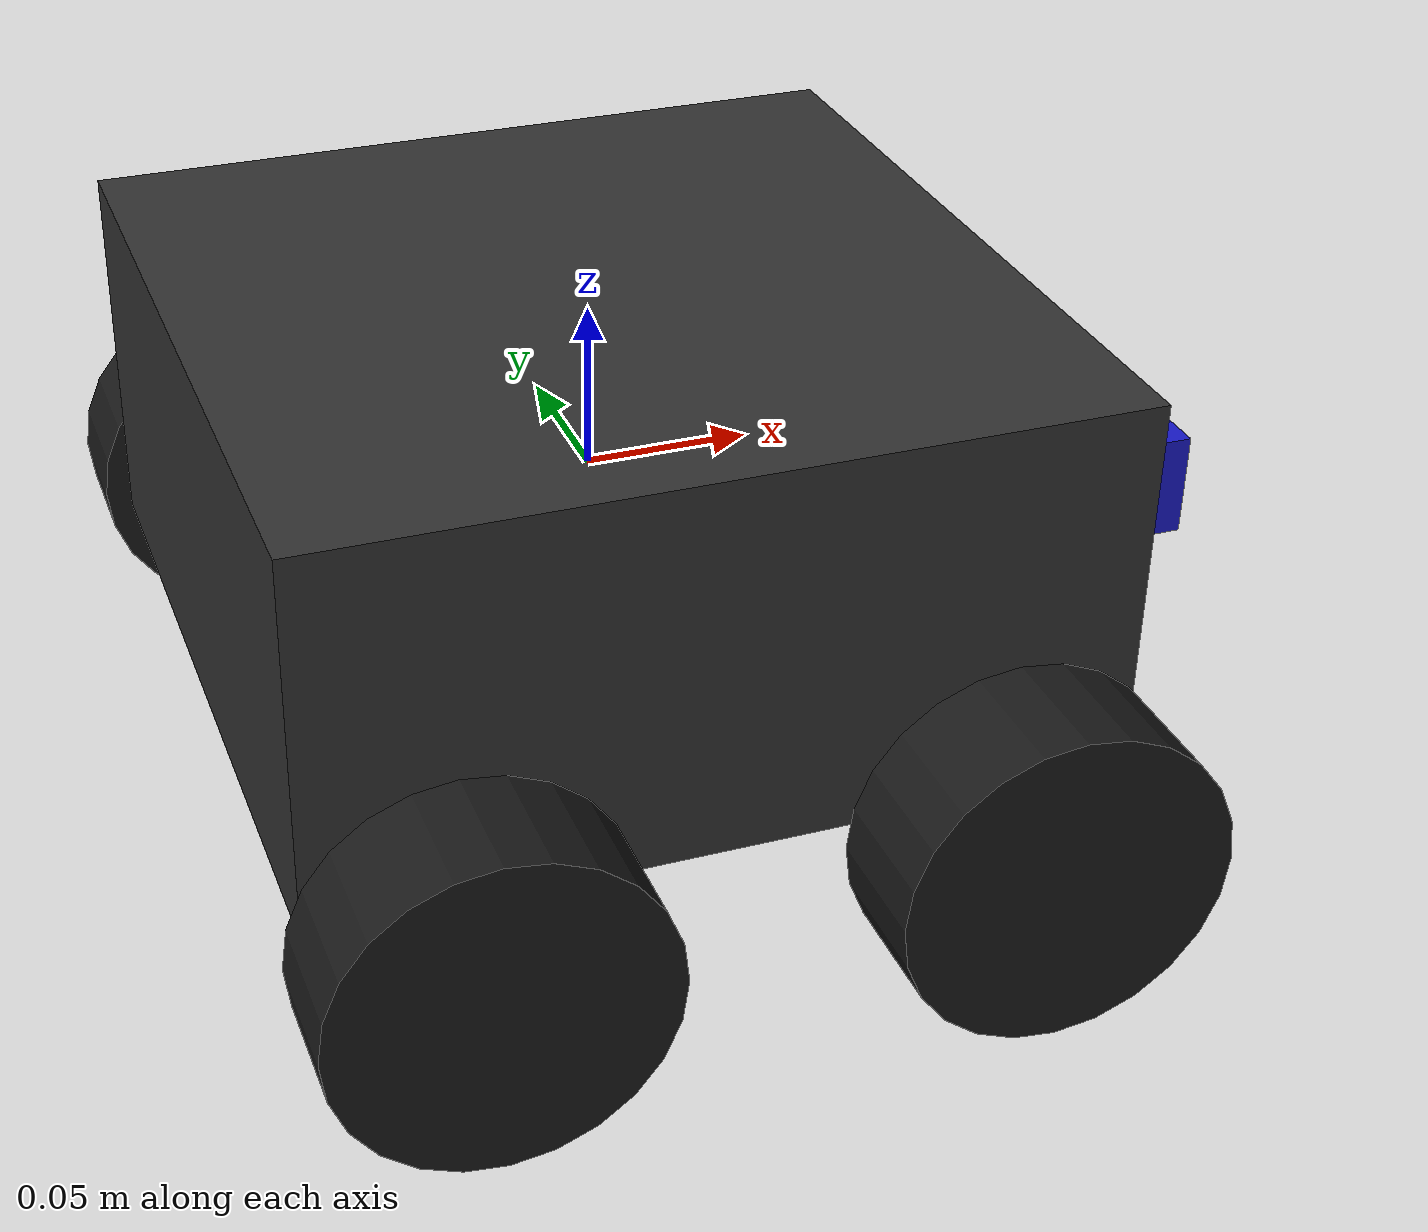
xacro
<?xml version="1.0"?>
<robot name="collecting_robot" xmlns:xacro="http://www.ros.org/wiki/xacro">

  <!-- Real dimensions (m, kg) -->
  <xacro:property name="base_length" value="0.24"/>
  <xacro:property name="base_width"  value="0.24"/>
  <xacro:property name="base_height" value="0.116"/>
  <xacro:property name="base_mass"   value="2.0"/>

  <xacro:property name="wheel_radius" value="0.0485"/>
  <xacro:property name="wheel_width"  value="0.038"/>
  <xacro:property name="wheel_mass"   value="0.15"/>
  <xacro:property name="wheel_x_off"  value="0.0785"/>   <!-- wheel center -> robot center, longitudinal -->
  <xacro:property name="wheel_y_off"  value="0.148"/>    <!-- wheel center -> robot center, lateral -->

  <!-- Astra camera relative to base_link (hand-measured) -->
  <xacro:property name="cam_x" value="0.135"/>
  <xacro:property name="cam_y" value="0.0"/>
  <xacro:property name="cam_z" value="-0.05"/>           <!-- relative to the top of the body -->

  <xacro:property name="PI" value="3.14159265359"/>

  <material name="dark_gray"><color rgba="0.2 0.2 0.2 1.0"/></material>
  <material name="black"><color rgba="0.1 0.1 0.1 1.0"/></material>
  <material name="camera_blue"><color rgba="0.1 0.1 0.8 1.0"/></material>

  <!-- Inertia macros -->
  <xacro:macro name="box_inertia" params="m x y z">
    <inertial>
      <mass value="${m}"/>
      <inertia ixx="${m*(y*y+z*z)/12}" ixy="0" ixz="0"
               iyy="${m*(x*x+z*z)/12}" iyz="0"
               izz="${m*(x*x+y*y)/12}"/>
    </inertial>
  </xacro:macro>

  <xacro:macro name="cylinder_inertia" params="m r h">
    <inertial>
      <mass value="${m}"/>
      <inertia ixx="${m*(3*r*r+h*h)/12}" ixy="0" ixz="0"
               iyy="${m*(3*r*r+h*h)/12}" iyz="0"
               izz="${m*r*r/2}"/>
    </inertial>
  </xacro:macro>

  <!-- base_link: the navigation frame (tree ROOT, X-forward per REP-103) -->
  <link name="base_link">
    <visual>
      <origin xyz="0 0 0" rpy="0 0 0"/>
      <geometry><box size="${base_length} ${base_width} ${base_height}"/></geometry>
      <material name="dark_gray"/>
    </visual>
    <collision>
      <geometry><box size="${base_length} ${base_width} ${base_height}"/></geometry>
    </collision>
    <xacro:box_inertia m="${base_mass}" x="${base_length}" y="${base_width}" z="${base_height}"/>
  </link>

  <!-- base_footprint: ground projection (z=0), CHILD of base_link -->
  <link name="base_footprint"/>
  <joint name="base_to_footprint" type="fixed">
    <parent link="base_link"/>
    <child  link="base_footprint"/>
    <origin xyz="0 0 ${-(base_height/2 + wheel_radius)}" rpy="0 0 0"/>
  </joint>

  <!-- Mecanum wheels (FIXED, display only; odom is NOT derived from the wheels) -->
  <xacro:macro name="mecanum_wheel" params="name pos_x pos_y">
    <link name="wheel_${name}_link">
      <visual>
        <origin xyz="0 0 0" rpy="${PI/2} 0 0"/>
        <geometry><cylinder radius="${wheel_radius}" length="${wheel_width}"/></geometry>
        <material name="black"/>
      </visual>
      <collision>
        <origin xyz="0 0 0" rpy="${PI/2} 0 0"/>
        <geometry><cylinder radius="${wheel_radius}" length="${wheel_width}"/></geometry>
      </collision>
      <xacro:cylinder_inertia m="${wheel_mass}" r="${wheel_radius}" h="${wheel_width}"/>
    </link>
    <joint name="wheel_${name}_joint" type="fixed">
      <parent link="base_link"/>
      <child  link="wheel_${name}_link"/>
      <origin xyz="${pos_x} ${pos_y} ${-base_height/2}" rpy="0 0 0"/>
    </joint>
  </xacro:macro>

  <xacro:mecanum_wheel name="fl" pos_x=" ${wheel_x_off}" pos_y=" ${wheel_y_off}"/>
  <xacro:mecanum_wheel name="fr" pos_x=" ${wheel_x_off}" pos_y="-${wheel_y_off}"/>
  <xacro:mecanum_wheel name="rl" pos_x="-${wheel_x_off}" pos_y=" ${wheel_y_off}"/>
  <xacro:mecanum_wheel name="rr" pos_x="-${wheel_x_off}" pos_y="-${wheel_y_off}"/>

  <!-- Astra camera: mechanical link + 2 optical frames (REP-103: z-forward) -->
  <link name="camera_link">
    <visual>
      <geometry><box size="0.035 0.165 0.030"/></geometry>
      <material name="camera_blue"/>
    </visual>
    <collision>
      <geometry><box size="0.035 0.165 0.030"/></geometry>
    </collision>
    <inertial>
      <mass value="0.17"/>
      <inertia ixx="0.001" ixy="0" ixz="0" iyy="0.001" iyz="0" izz="0.001"/>
    </inertial>
  </link>
  <joint name="base_to_camera" type="fixed">
    <parent link="base_link"/>
    <child  link="camera_link"/>
    <origin xyz="${cam_x} ${cam_y} ${base_height/2 + cam_z}" rpy="0 0 0"/>
  </joint>

  <!-- depth optical: matches astra_node/camera_manager frame_id + depth2scan output_frame -->
  <link name="camera_depth_optical_frame"/>
  <joint name="camera_to_depth_optical" type="fixed">
    <parent link="camera_link"/>
    <child  link="camera_depth_optical_frame"/>
    <origin xyz="0 0 0" rpy="${-PI/2} 0 ${-PI/2}"/>
  </joint>

  <!-- color optical: matches camera_manager/astra_color_node (/camera/color/image_raw) -->
  <link name="camera_color_optical_frame"/>
  <joint name="camera_to_color_optical" type="fixed">
    <parent link="camera_link"/>
    <child  link="camera_color_optical_frame"/>
    <origin xyz="0 0.015 0" rpy="${-PI/2} 0 ${-PI/2}"/>
  </joint>

</robot>
